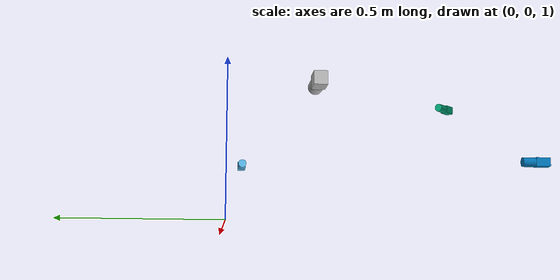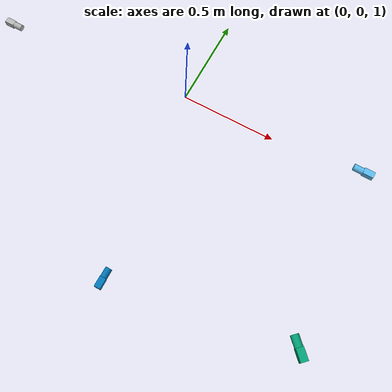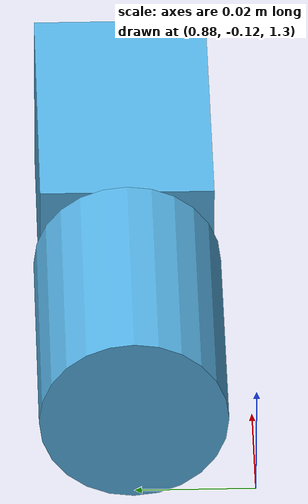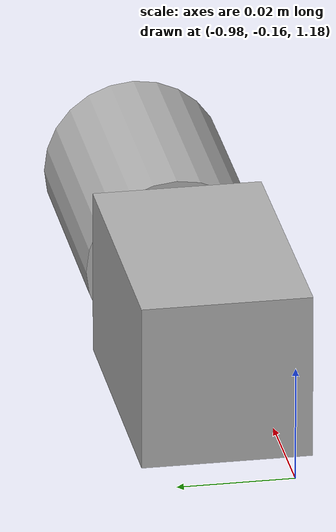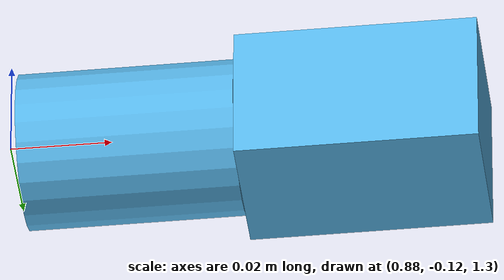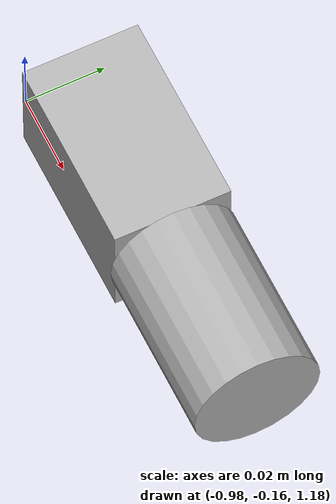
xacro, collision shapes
<?xml version="1.0"?>
<robot xmlns:xacro="http://wiki.ros.org/xacro" name="overview_camera_array">
  <xacro:include filename="$(find aic_assets)/models/Basler Camera/basler_camera_macro.xacro"/>

  <link name="overview_base">
    <inertial>
      <origin xyz="0 0 0" rpy="0 0 0"/>
      <mass value="0.001"/>
      <inertia ixx="0.000001" ixy="0" ixz="0" iyy="0.000001" iyz="0" izz="0.000001"/>
    </inertial>
  </link>

  <gazebo reference="overview_base">
    <gravity>false</gravity>
  </gazebo>

  <xacro:basler_camera name="overview_camera" tf_prefix="overview_camera/" use_sim_cam="${True}"/>
  <xacro:basler_camera name="overview_front_camera" tf_prefix="overview_front_camera/" use_sim_cam="${True}"/>
  <xacro:basler_camera name="overview_side_camera" tf_prefix="overview_side_camera/" use_sim_cam="${True}"/>
  <xacro:basler_camera name="overview_oblique_camera" tf_prefix="overview_oblique_camera/" use_sim_cam="${True}"/>

  <joint name="attach_overview_camera" type="fixed">
    <origin xyz="0.95 -0.1 1.3" rpy="0 0 3.14"/>
    <parent link="overview_base"/>
    <child link="overview_camera/camera_link"/>
  </joint>

  <joint name="attach_overview_front_camera" type="fixed">
    <origin xyz="0.15 -1.05 1.22" rpy="1.5708 0 1.5708"/>
    <parent link="overview_base"/>
    <child link="overview_front_camera/camera_link"/>
  </joint>

  <joint name="attach_overview_side_camera" type="fixed">
    <origin xyz="-0.95 -0.15 1.18" rpy="0 0 0"/>
    <parent link="overview_base"/>
    <child link="overview_side_camera/camera_link"/>
  </joint>

  <joint name="attach_overview_oblique_camera" type="fixed">
    <origin xyz="0.95 -0.95 1.55" rpy="0 0 2.35"/>
    <parent link="overview_base"/>
    <child link="overview_oblique_camera/camera_link"/>
  </joint>
</robot>

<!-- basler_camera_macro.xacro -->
<robot xmlns:xacro="http://wiki.ros.org/xacro">

  <xacro:macro name="basler_camera" params="name tf_prefix use_sim_cam">

    <link name="${tf_prefix}camera_link">
      <inertial>
        <origin xyz="0 0 0" rpy="0 0 0"/>
        <mass value="0.001"/>
        <inertia ixx="0.00002083" ixy="0" ixz="0"
                 iyy="0.00002083" iyz="0"
                 izz="0.000015"/>
      </inertial>

      <visual name="basler_cam_visual">
        <origin xyz="0 0 0" rpy="-1.5708 0 -1.5708"/>
        <geometry>
          <mesh filename="package://aic_assets/models/Basler Camera/basler_cam_visual.glb"/>
        </geometry>
      </visual>

      <collision name="body_collider_box">
        <origin xyz="0.00255 0 0.0145" rpy="0 0 0"/>
        <geometry>
          <box size="0.0483 0.029 0.029"/>
        </geometry>
      </collision>

      <collision name="lens_collider_cylinder">
        <origin xyz="0.04833 0 0.0145" rpy="0 1.5708 0"/>
        <geometry>
          <cylinder radius="0.015631" length="0.04326"/>
        </geometry>
      </collision>
    </link>

    <link name="${tf_prefix}sensor_link">
      <!-- inertial property required for valid conversion to SDF,
        so we set a tiny mass and M.O.I. here -->
      <inertial>
        <origin xyz="0 0 0" rpy="0 0 0"/>
        <mass value="0.001"/>
        <inertia ixx="0.000001" ixy="0" ixz="0"
                 iyy="0.000001" iyz="0"
                 izz="0.000001"/>
      </inertial>
    </link>

    <!-- The sensor surface is 21.174mm in front of the M3 mounting hole -->
    <joint name="${tf_prefix}attach_sensor_link" type="fixed">
      <origin xyz="0.02174 0 0.0145" rpy="0 0 0"/>
      <parent link="${tf_prefix}camera_link"/>
      <child link="${tf_prefix}sensor_link"/>
    </joint>

    <gazebo reference="${tf_prefix}attach_sensor_link">
      <preserveFixedJoint>true</preserveFixedJoint>
    </gazebo>

    <link name="${tf_prefix}optical">
      <!-- inertial property required for valid conversion to SDF,
        so we set a tiny mass and M.O.I. here -->
      <inertial>
        <origin xyz="0 0 0" rpy="0 0 0"/>
        <mass value="0.001"/>
        <inertia ixx="0.000001" ixy="0" ixz="0"
                 iyy="0.000001" iyz="0"
                 izz="0.000001"/>
      </inertial>
    </link>

    <!-- The optical frame is at the same origin as the sensor frame
         but is Z=forward, rather than Z=up. -->
    <joint name="${tf_prefix}attach_optical" type="fixed">
      <origin xyz="0 0 0" rpy="-1.5708 0 -1.5708"/>
      <parent link="${tf_prefix}sensor_link"/>
      <child link="${tf_prefix}optical"/>
    </joint>

    <gazebo reference="${tf_prefix}attach_optical">
      <preserveFixedJoint>true</preserveFixedJoint>
    </gazebo>

    <xacro:if value="${use_sim_cam}">
      <gazebo reference="${tf_prefix}sensor_link">
        <sensor name="${name}" type="camera">
          <pose>0 0 0 0 0 0</pose>
          <update_rate>20.0</update_rate>
          <topic>/${name}/image</topic>
          <always_on>true</always_on>
          <frame_id>${tf_prefix}sensor_link</frame_id>
          <camera name="${name}">
            <camera_info_topic>/${name}/camera_info</camera_info_topic>
            <optical_frame_id>${tf_prefix}optical</optical_frame_id>
            <image>
              <width>256</width>
              <height>256</height>
              <format>R8G8B8</format>
            </image>
            <horizontal_fov>0.8718</horizontal_fov>
            <clip>
              <near>0.07</near>
              <far>20</far>
            </clip>
          </camera>
        </sensor>
      </gazebo>
    </xacro:if>

  </xacro:macro>

</robot>
